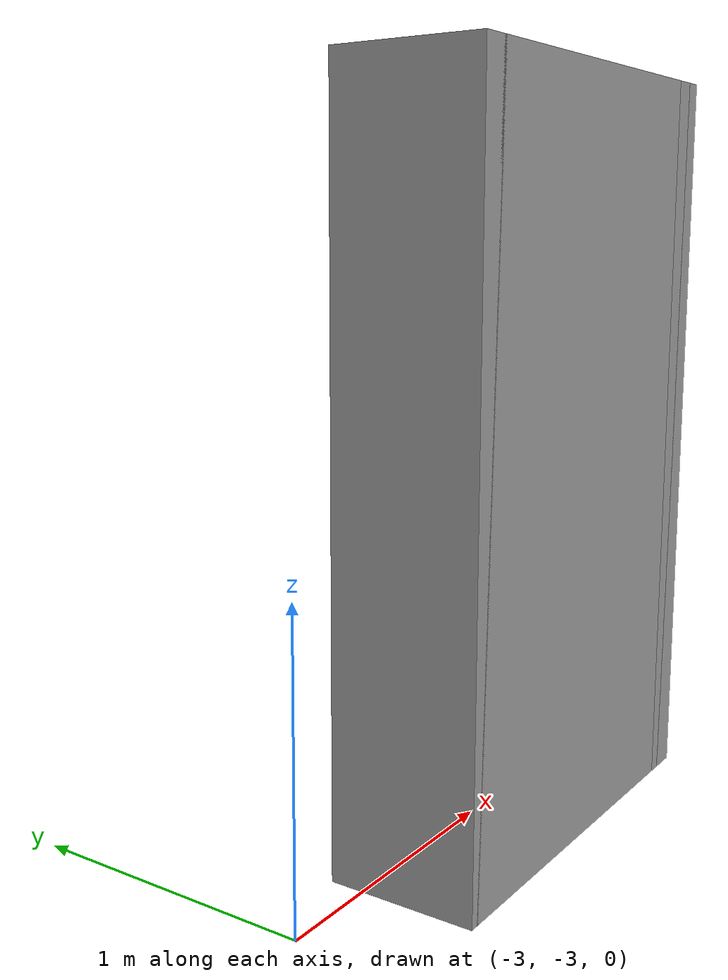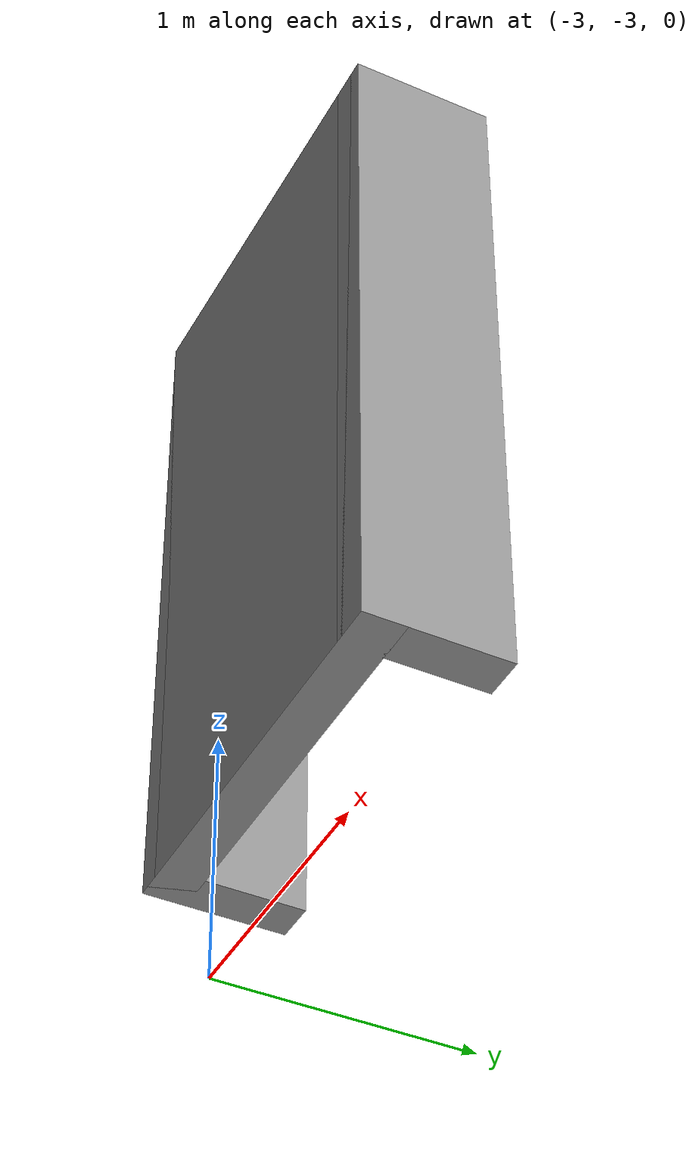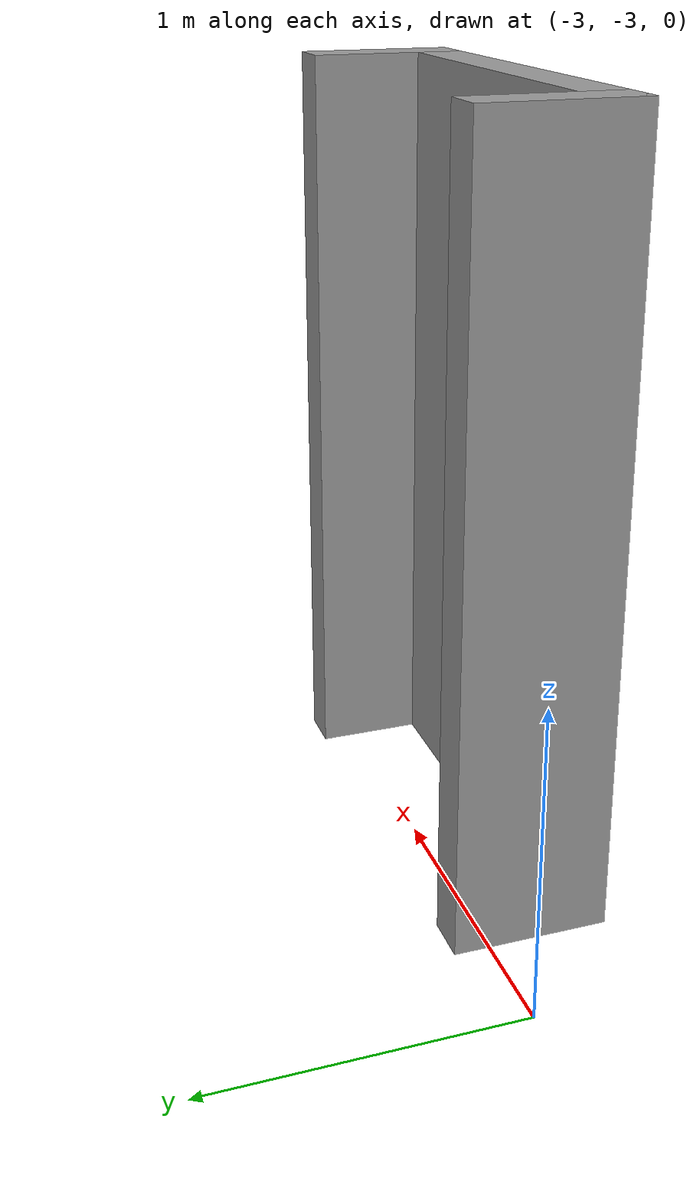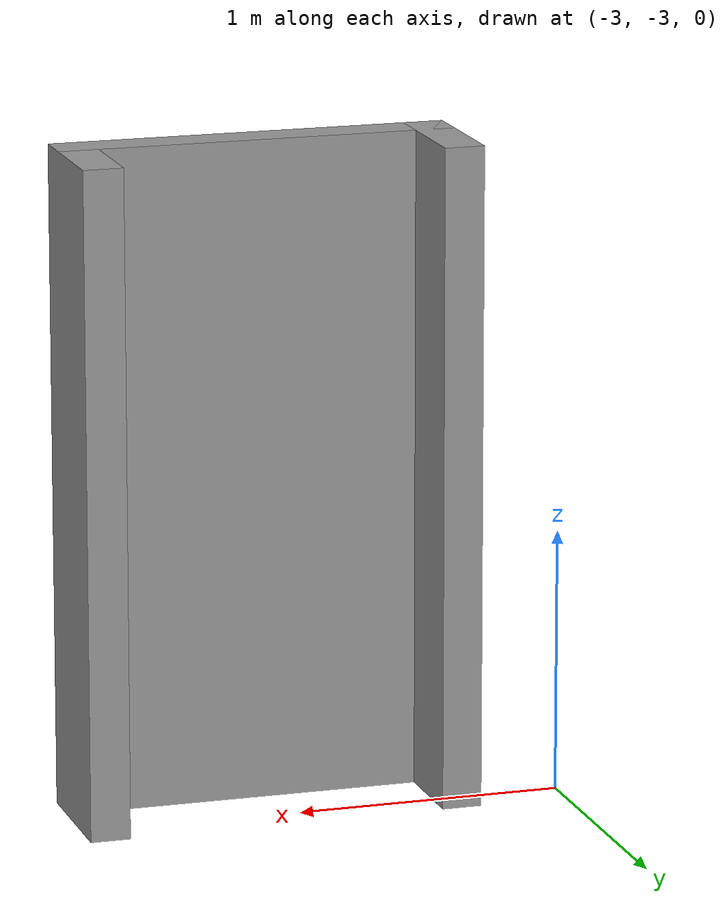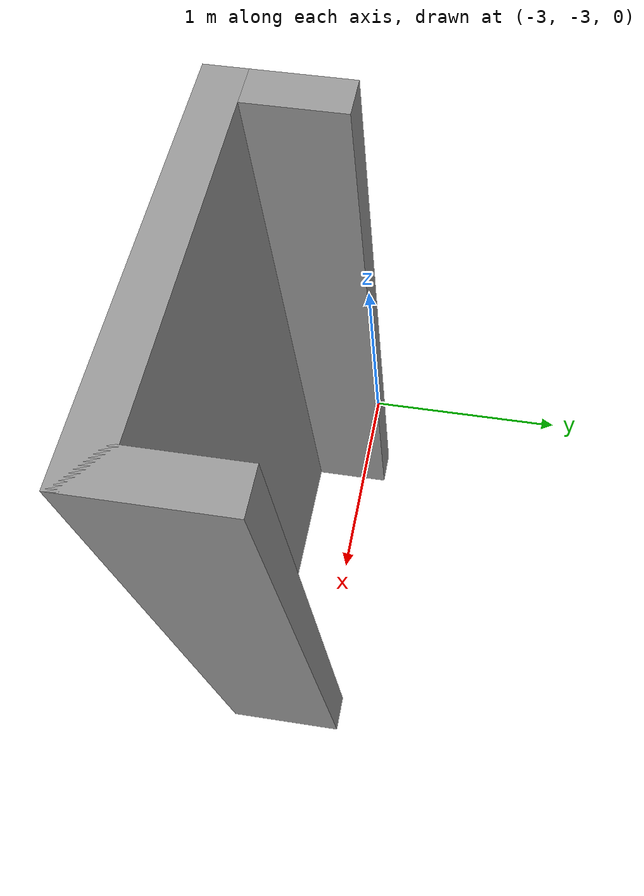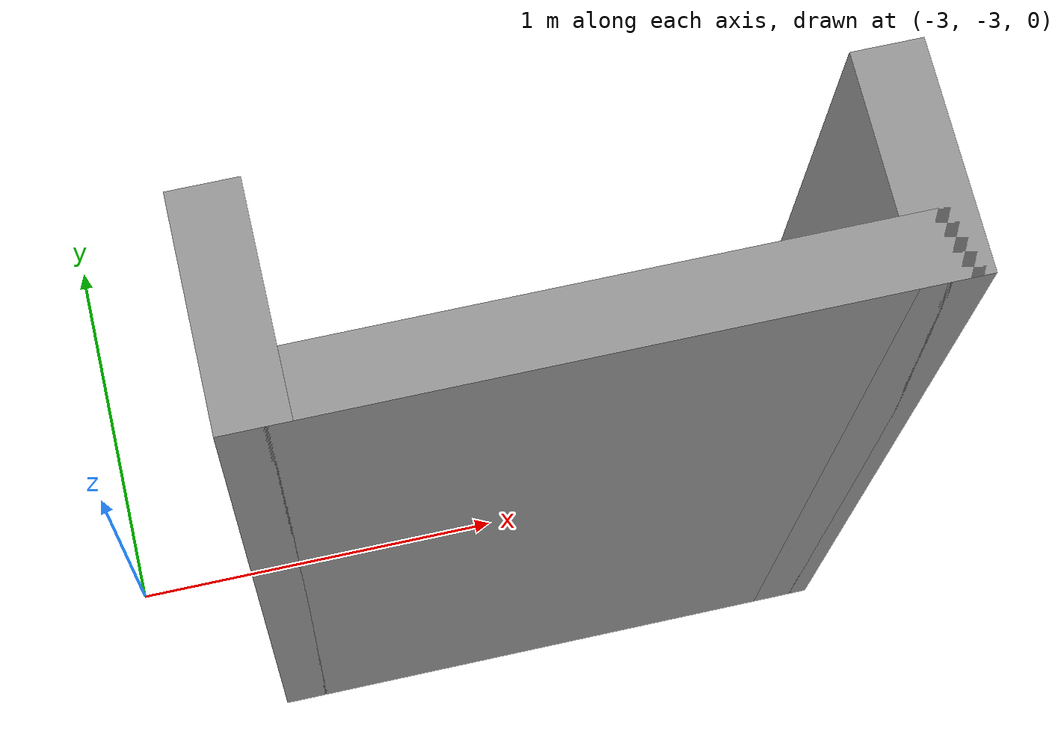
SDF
<?xml version='1.0'?>
<sdf version='1.7'>
  <model name='viga_1m5'>
    <pose>-1.33366 -1.6933 0 0 -0 0</pose>
    <link name='Wall_0'>
      <collision name='Wall_0_Collision'>
        <geometry>
          <box>
            <size>1.5 0.15 2.5</size>
          </box>
        </geometry>
        <pose>0 0 1.25 0 -0 0</pose>
      </collision>
      <visual name='Wall_0_Visual'>
        <pose>0 0 1.25 0 -0 0</pose>
        <geometry>
          <box>
            <size>1.5 0.15 2.5</size>
          </box>
        </geometry>
        <material>
          <script>
            <uri>file://media/materials/scripts/gazebo.material</uri>
            <name>Gazebo/Grey</name>
          </script>
          <ambient>1 1 1 1</ambient>
        </material>
        <meta>
          <layer>0</layer>
        </meta>
      </visual>
      <pose>-0.583658 -1.6183 0 0 -0 0</pose>
    </link>
    <link name='Wall_2'>
      <collision name='Wall_2_Collision'>
        <geometry>
          <box>
            <size>0.5 0.15 2.5</size>
          </box>
        </geometry>
        <pose>0 0 1.25 0 -0 0</pose>
      </collision>
      <visual name='Wall_2_Visual'>
        <pose>0 0 1.25 0 -0 0</pose>
        <geometry>
          <box>
            <size>0.5 0.15 2.5</size>
          </box>
        </geometry>
        <material>
          <script>
            <uri>file://media/materials/scripts/gazebo.material</uri>
            <name>Gazebo/Grey</name>
          </script>
          <ambient>1 1 1 1</ambient>
        </material>
        <meta>
          <layer>0</layer>
        </meta>
      </visual>
      <pose>0.091342 -1.4433 0 0 -0 1.5708</pose>
    </link>
    <link name='Wall_4'>
      <collision name='Wall_4_Collision'>
        <geometry>
          <box>
            <size>0.5 0.15 2.5</size>
          </box>
        </geometry>
        <pose>0 0 1.25 0 -0 0</pose>
      </collision>
      <visual name='Wall_4_Visual'>
        <pose>0 0 1.25 0 -0 0</pose>
        <geometry>
          <box>
            <size>0.5 0.15 2.5</size>
          </box>
        </geometry>
        <material>
          <script>
            <uri>file://media/materials/scripts/gazebo.material</uri>
            <name>Gazebo/Grey</name>
          </script>
          <ambient>1 1 1 1</ambient>
        </material>
        <meta>
          <layer>0</layer>
        </meta>
      </visual>
      <pose>-1.25866 -1.4433 0 0 -0 1.5708</pose>
    </link>
    <static>1</static>
  </model>
</sdf>
